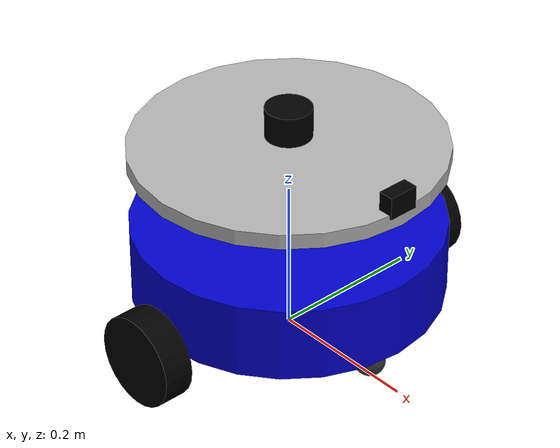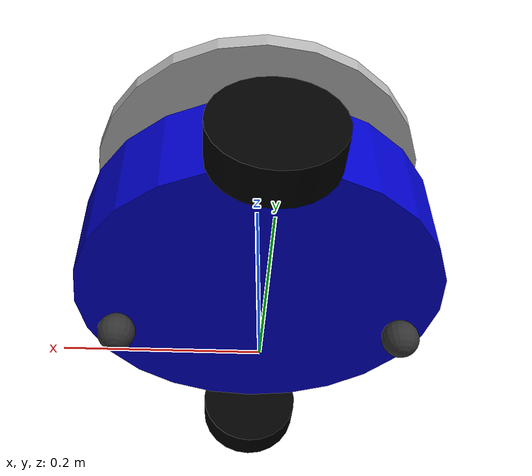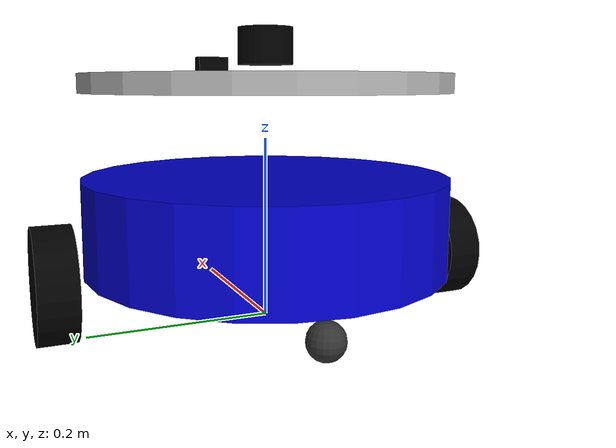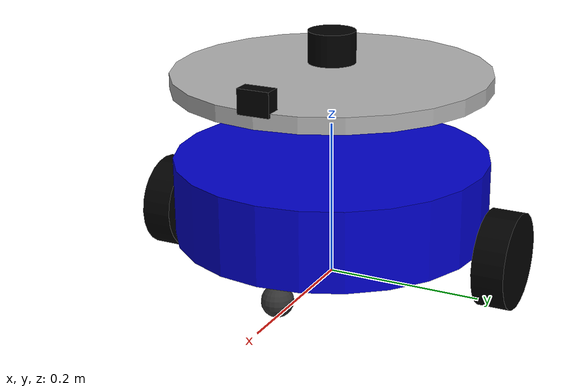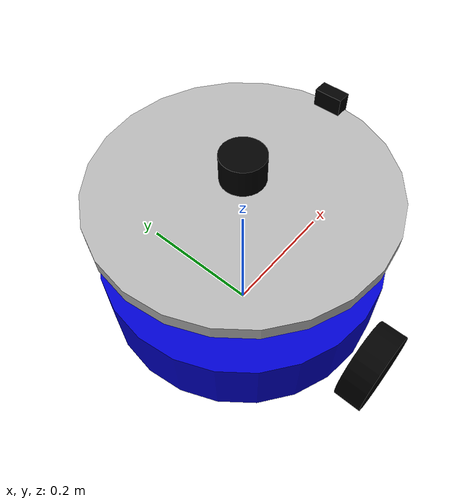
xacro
<?xml version="1.0"?>
<robot xmlns:xacro="http://www.ros.org/wiki/xacro" name="multi_story_car">

  <xacro:arg name="robot_name" default="robot_1"/>

  <link name="base_footprint"/>

  <joint name="base_joint" type="fixed">
    <parent link="base_footprint"/>
    <child link="base_link"/>
    <origin xyz="0.0 0.0 0.11" rpy="0.0 0.0 0.0"/>
  </joint>

  <link name="base_link">
    <visual>
      <geometry>
        <cylinder radius="0.2" length="0.1"/>
      </geometry>
      <material name="chassis_mat">
        <color rgba="0.0 0.0 0.8 1.0"/>
      </material>
    </visual>
    <collision>
      <geometry>
        <cylinder radius="0.2" length="0.1"/>
      </geometry>
    </collision>
    <inertial>
      <mass value="5.0"/>
      <origin xyz="0 0 0" rpy="0 0 0"/>
      <inertia ixx="0.054" ixy="0.0" ixz="0.0" iyy="0.054" iyz="0.0" izz="0.1"/>
    </inertial>
  </link>

  <joint name="deck_joint" type="fixed">
    <parent link="base_link"/>
    <child link="upper_deck_link"/>
    <origin xyz="0.0 0.0 0.15" rpy="0.0 0.0 0.0"/>
  </joint>

  <link name="upper_deck_link">
    <visual>
      <geometry>
        <cylinder radius="0.2" length="0.02"/>
      </geometry>
      <material name="deck_mat">
        <color rgba="0.7 0.7 0.7 1.0"/>
      </material>
    </visual>
    <collision>
      <geometry>
        <cylinder radius="0.2" length="0.02"/>
      </geometry>
    </collision>
    <inertial>
      <mass value="1.0"/>
      <origin xyz="0 0 0" rpy="0 0 0"/>
      <inertia ixx="0.01" ixy="0.0" ixz="0.0" iyy="0.01" iyz="0.0" izz="0.02"/>
    </inertial>
  </link>

  <joint name="left_wheel_joint" type="continuous">
    <parent link="base_link"/>
    <child link="left_wheel_link"/>
    <origin xyz="0.0 0.23 -0.05" rpy="-1.5708 0.0 0.0"/>
    <axis xyz="0.0 0.0 1.0"/>
  </joint>

  <link name="left_wheel_link">
    <visual>
      <geometry>
        <cylinder radius="0.06" length="0.04"/>
      </geometry>
      <material name="wheel_l_mat">
        <color rgba="0.0 0.0 0.0 1.0"/>
      </material>
    </visual>
    <collision>
      <geometry>
        <cylinder radius="0.06" length="0.04"/>
      </geometry>
    </collision>
    <inertial>
      <mass value="0.4"/>
      <inertia ixx="0.00019" ixy="0.0" ixz="0.0" iyy="0.00019" iyz="0.0" izz="0.00032"/>
    </inertial>
  </link>

  <joint name="right_wheel_joint" type="continuous">
    <parent link="base_link"/>
    <child link="right_wheel_link"/>
    <origin xyz="0.0 -0.23 -0.05" rpy="-1.5708 0.0 0.0"/>
    <axis xyz="0.0 0.0 1.0"/>
  </joint>

  <link name="right_wheel_link">
    <visual>
      <geometry>
        <cylinder radius="0.06" length="0.04"/>
      </geometry>
      <material name="wheel_r_mat">
        <color rgba="0.0 0.0 0.0 1.0"/>
      </material>
    </visual>
    <collision>
      <geometry>
        <cylinder radius="0.06" length="0.04"/>
      </geometry>
    </collision>
    <inertial>
      <mass value="0.4"/>
      <inertia ixx="0.00019" ixy="0.0" ixz="0.0" iyy="0.00019" iyz="0.0" izz="0.00032"/>
    </inertial>
  </link>

  <joint name="front_caster_joint" type="fixed">
    <parent link="base_link"/>
    <child link="front_caster_link"/>
    <origin xyz="0.15 0.0 -0.089" rpy="0.0 0.0 0.0"/>
  </joint>

  <link name="front_caster_link">
    <visual>
      <geometry>
        <sphere radius="0.02"/>
      </geometry>
      <material name="caster_f_mat">
        <color rgba="0.2 0.2 0.2 1.0"/>
      </material>
    </visual>
    <collision>
      <geometry>
        <sphere radius="0.02"/>
      </geometry>
    </collision>
    <inertial>
      <mass value="0.1"/>
      <inertia ixx="0.000016" ixy="0.0" ixz="0.0" iyy="0.000016" iyz="0.0" izz="0.000016"/>
    </inertial>
  </link>

  <joint name="rear_caster_joint" type="fixed">
    <parent link="base_link"/>
    <child link="rear_caster_link"/>
    <origin xyz="-0.15 0.0 -0.089" rpy="0.0 0.0 0.0"/>
  </joint>

  <link name="rear_caster_link">
    <visual>
      <geometry>
        <sphere radius="0.02"/>
      </geometry>
      <material name="caster_b_mat">
        <color rgba="0.2 0.2 0.2 1.0"/>
      </material>
    </visual>
    <collision>
      <geometry>
        <sphere radius="0.02"/>
      </geometry>
    </collision>
    <inertial>
      <mass value="0.1"/>
      <inertia ixx="0.000016" ixy="0.0" ixz="0.0" iyy="0.000016" iyz="0.0" izz="0.000016"/>
    </inertial>
  </link>

  <joint name="laser_joint" type="fixed">
    <parent link="upper_deck_link"/>
    <child link="laser_link"/>
    <origin xyz="0.0 0.0 0.04" rpy="0.0 0.0 0.0"/>
  </joint>

  <link name="laser_link">
    <visual>
      <geometry>
        <cylinder radius="0.03" length="0.04"/>
      </geometry>
      <material name="laser_mat">
        <color rgba="0.0 0.0 0.0 1.0"/>
      </material>
    </visual>
    <collision>
      <geometry>
        <cylinder radius="0.03" length="0.04"/>
      </geometry>
    </collision>
    <inertial>
      <mass value="0.1"/>
      <inertia ixx="0.00002" ixy="0.0" ixz="0.0" iyy="0.00002" iyz="0.0" izz="0.00004"/>
    </inertial>
  </link>

  <joint name="camera_joint" type="fixed">
    <parent link="upper_deck_link"/>
    <child link="camera_link"/>
    <origin xyz="0.19 0.0 0.02" rpy="0.0 0.0 0.0"/>
  </joint>

  <link name="camera_link">
    <visual>
      <geometry>
        <box size="0.02 0.04 0.03"/>
      </geometry>
      <material name="camera_mat">
        <color rgba="0.0 0.0 0.0 1.0"/>
      </material>
    </visual>
    <collision>
      <geometry>
        <box size="0.02 0.04 0.03"/>
      </geometry>
    </collision>
    <inertial>
      <mass value="0.05"/>
      <inertia ixx="0.00001" ixy="0.0" ixz="0.0" iyy="0.00001" iyz="0.0" izz="0.00001"/>
    </inertial>
  </link>

  <gazebo reference="base_link">
    <material>Gazebo/Blue</material>
    <laserRetro>50.0</laserRetro>
  </gazebo>

  <gazebo reference="upper_deck_link">
    <material>Gazebo/Grey</material>
    <laserRetro>50.0</laserRetro>
  </gazebo>

  <gazebo reference="left_wheel_link">
    <mu1 value="2.5"/>
    <mu2 value="2.5"/>
    <material>Gazebo/Black</material>
    <laserRetro>30.0</laserRetro>
  </gazebo>

  <gazebo reference="right_wheel_link">
    <mu1 value="2.5"/>
    <mu2 value="2.5"/>
    <material>Gazebo/Black</material>
    <laserRetro>30.0</laserRetro>
  </gazebo>

  <gazebo reference="front_caster_link">
    <mu1 value="0.0001"/>
    <mu2 value="0.0001"/>
    <material>Gazebo/DarkGrey</material>
  </gazebo>

  <gazebo reference="rear_caster_link">
    <mu1 value="0.0001"/>
    <mu2 value="0.0001"/>
    <material>Gazebo/DarkGrey</material>
  </gazebo>

  <gazebo>
    <plugin name="diff_drive" filename="libgazebo_ros_diff_drive.so">
      <ros>
        <namespace>/$(arg robot_name)</namespace>
        <remapping>cmd_vel:=cmd_vel</remapping>
        <remapping>odom:=odom</remapping>
      </ros>
      <left_joint>left_wheel_joint</left_joint>
      <right_joint>right_wheel_joint</right_joint>
      <wheel_separation>0.46</wheel_separation>
      <wheel_diameter>0.12</wheel_diameter>
      <max_wheel_torque>35</max_wheel_torque>
      <max_wheel_acceleration>2.5</max_wheel_acceleration>
      <publish_odom>true</publish_odom>
      <publish_odom_tf>true</publish_odom_tf>
      <publish_wheel_tf>true</publish_wheel_tf>
      <odometry_frame>odom</odometry_frame>
      <robot_base_frame>base_footprint</robot_base_frame>
    </plugin>
  </gazebo>

  <gazebo reference="laser_link">
    <sensor type="ray" name="laser_sensor">
      <pose>0 0 0 0 0 0</pose>
      <visualize>false</visualize>
      <update_rate>10</update_rate>
      <ray>
        <scan>
          <horizontal>
            <samples>360</samples>
            <resolution>1</resolution>
            <min_angle>-3.14159</min_angle>
            <max_angle>3.14159</max_angle>
          </horizontal>
        </scan>
        <range>
          <min>0.21</min>
          <max>12.0</max>
          <resolution>0.01</resolution>
        </range>
      </ray>
      <plugin name="laser_controller" filename="libgazebo_ros_ray_sensor.so">
        <ros>
          <namespace>/$(arg robot_name)</namespace>
          <remapping>~/out:=scan</remapping>
        </ros>
        <output_type>sensor_msgs/LaserScan</output_type>
        <frame_name>laser_link</frame_name>
      </plugin>
    </sensor>
  </gazebo>

  <gazebo reference="camera_link">
    <sensor type="camera" name="camera_sensor">
      <update_rate>30.0</update_rate>
      <camera name="head">
        <horizontal_fov>1.3962634</horizontal_fov>
        <image>
          <width>320</width>
          <height>240</height>
          <format>R8G8B8</format>
        </image>
        <clip>
          <near>0.02</near>
          <far>100.0</far>
        </clip>
      </camera>
      <plugin name="camera_controller" filename="libgazebo_ros_camera.so">
        <ros>
          <namespace>/$(arg robot_name)</namespace>
          <remapping>image_raw:=camera/image_raw</remapping>
        </ros>
        <frame_name>camera_link</frame_name>
      </plugin>
    </sensor>
  </gazebo>

</robot>
